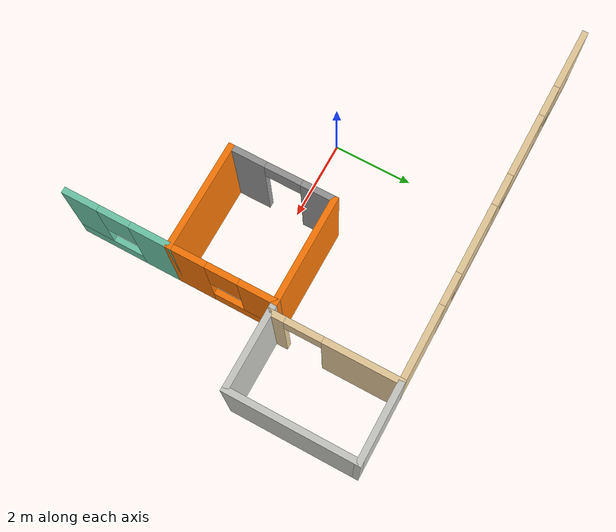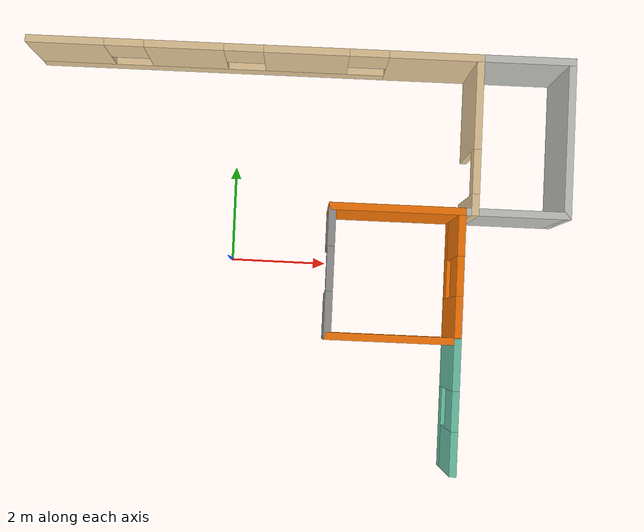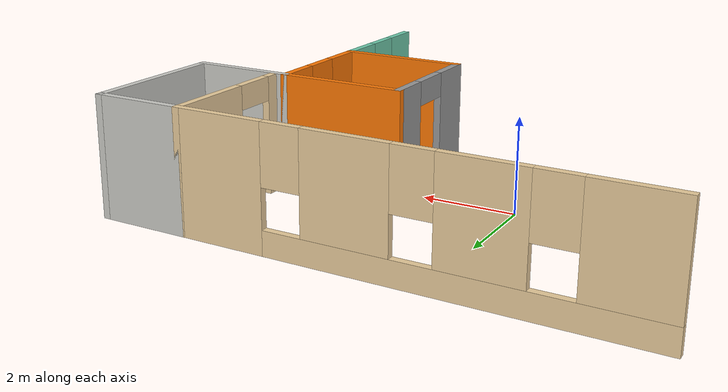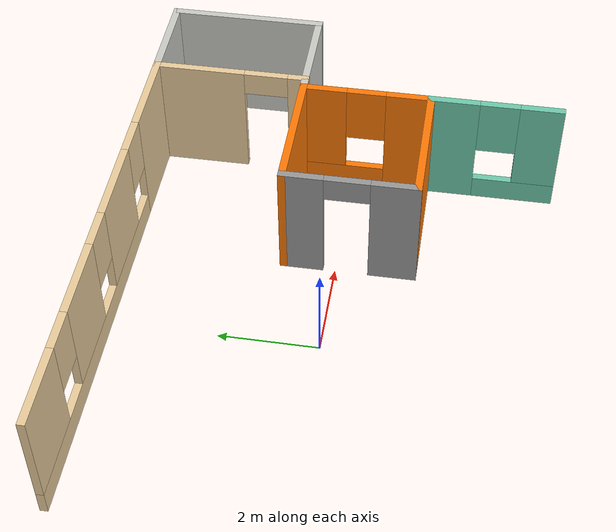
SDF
<sdf version="1.6">
 <model name="someHouse">
  <link name="Wall_24">
   <pose>3.375 -1.55 0 0 -0 0</pose>
   <visual name="Wall_24_Visual">
    <pose>0 0 1.25 0 -0 0</pose>
    <geometry><box><size>2.75 0.15 2.5</size></box></geometry>
    <material>
     <script><uri>file://media/materials/scripts/gazebo.material</uri><name>Gazebo/Grey</name></script>
     <ambient>0.996078 0.47451 0.0196078 1</ambient>
     <shader type="pixel"/>
     <diffuse>0.7 0.7 0.7 1</diffuse>
     <specular>0.01 0.01 0.01 1</specular>
     <emissive>0 0 0 1</emissive>
    </material>
    <meta><layer>0</layer></meta>
   </visual>
   <collision name="Wall_24_Collision">
    <pose>0 0 1.25 0 -0 0</pose>
    <geometry><box><size>2.75 0.15 2.5</size></box></geometry>
    <surface>
     <friction>
      <ode><mu>1</mu><mu2>1</mu2><fdir1>0 0 0</fdir1><slip1>0</slip1><slip2>0</slip2></ode>
      <torsional>
       <coefficient>1</coefficient>
       <patch_radius>0</patch_radius>
       <surface_radius>0</surface_radius>
       <use_patch_radius>1</use_patch_radius>
       <ode><slip>0</slip></ode>
      </torsional>
     </friction>
     <bounce><restitution_coefficient>0</restitution_coefficient><threshold>1e+06</threshold></bounce>
     <contact>
      <collide_without_contact>0</collide_without_contact>
      <collide_without_contact_bitmask>1</collide_without_contact_bitmask>
      <collide_bitmask>1</collide_bitmask>
      <ode>
       <soft_cfm>0</soft_cfm>
       <soft_erp>0.2</soft_erp>
       <kp>1e+13</kp>
       <kd>1</kd>
       <max_vel>0.01</max_vel>
       <min_depth>0</min_depth>
      </ode>
      <bullet>
       <split_impulse>1</split_impulse>
       <split_impulse_penetration_threshold>-0.01</split_impulse_penetration_threshold>
       <soft_cfm>0</soft_cfm>
       <soft_erp>0.2</soft_erp>
       <kp>1e+13</kp>
       <kd>1</kd>
      </bullet>
     </contact>
    </surface>
   </collision>
  </link>
  <link name="Wall_25">
   <pose>4.675 -0.25 0 0 -0 1.5708</pose>
   <visual name="Wall_25_Visual_0">
    <pose>-0.884286 0 1.25 0 -0 0</pose>
    <geometry><box><size>0.981427 0.15 2.5</size></box></geometry>
    <material>
     <script><uri>file://media/materials/scripts/gazebo.material</uri><name>Gazebo/Grey</name></script>
     <ambient>0.996078 0.47451 0.0196078 1</ambient>
     <shader type="pixel"/>
     <diffuse>0.7 0.7 0.7 1</diffuse>
     <specular>0.01 0.01 0.01 1</specular>
     <emissive>0 0 0 1</emissive>
    </material>
    <meta><layer>0</layer></meta>
   </visual>
   <visual name="Wall_25_Visual_1">
    <pose>0.490714 0 0.25 0 -0 0</pose>
    <geometry><box><size>1.76857 0.15 0.5</size></box></geometry>
    <material>
     <script><uri>file://media/materials/scripts/gazebo.material</uri><name>Gazebo/Grey</name></script>
     <ambient>0.996078 0.47451 0.0196078 1</ambient>
     <shader type="pixel"/>
     <diffuse>0.7 0.7 0.7 1</diffuse>
     <specular>0.01 0.01 0.01 1</specular>
     <emissive>0 0 0 1</emissive>
    </material>
    <meta><layer>0</layer></meta>
   </visual>
   <visual name="Wall_25_Visual_2">
    <pose>0.890714 0 1.5 0 -0 0</pose>
    <geometry><box><size>0.968573 0.15 2</size></box></geometry>
    <material>
     <script><uri>file://media/materials/scripts/gazebo.material</uri><name>Gazebo/Grey</name></script>
     <ambient>0.996078 0.47451 0.0196078 1</ambient>
     <shader type="pixel"/>
     <diffuse>0.7 0.7 0.7 1</diffuse>
     <specular>0.01 0.01 0.01 1</specular>
     <emissive>0 0 0 1</emissive>
    </material>
    <meta><layer>0</layer></meta>
   </visual>
   <visual name="Wall_25_Visual_3">
    <pose>0.006427 0 1.9 0 -0 0</pose>
    <geometry><box><size>0.8 0.15 1.2</size></box></geometry>
    <material>
     <script><uri>file://media/materials/scripts/gazebo.material</uri><name>Gazebo/Grey</name></script>
     <ambient>0.996078 0.47451 0.0196078 1</ambient>
     <shader type="pixel"/>
     <diffuse>0.7 0.7 0.7 1</diffuse>
     <specular>0.01 0.01 0.01 1</specular>
     <emissive>0 0 0 1</emissive>
    </material>
    <meta><layer>0</layer></meta>
   </visual>
   <collision name="Wall_25_Collision_0">
    <pose>-0.884286 0 1.25 0 -0 0</pose>
    <geometry><box><size>0.981427 0.15 2.5</size></box></geometry>
    <surface>
     <friction>
      <ode><mu>1</mu><mu2>1</mu2><fdir1>0 0 0</fdir1><slip1>0</slip1><slip2>0</slip2></ode>
      <torsional>
       <coefficient>1</coefficient>
       <patch_radius>0</patch_radius>
       <surface_radius>0</surface_radius>
       <use_patch_radius>1</use_patch_radius>
       <ode><slip>0</slip></ode>
      </torsional>
     </friction>
     <bounce><restitution_coefficient>0</restitution_coefficient><threshold>1e+06</threshold></bounce>
     <contact>
      <collide_without_contact>0</collide_without_contact>
      <collide_without_contact_bitmask>1</collide_without_contact_bitmask>
      <collide_bitmask>1</collide_bitmask>
      <ode>
       <soft_cfm>0</soft_cfm>
       <soft_erp>0.2</soft_erp>
       <kp>1e+13</kp>
       <kd>1</kd>
       <max_vel>0.01</max_vel>
       <min_depth>0</min_depth>
      </ode>
      <bullet>
       <split_impulse>1</split_impulse>
       <split_impulse_penetration_threshold>-0.01</split_impulse_penetration_threshold>
       <soft_cfm>0</soft_cfm>
       <soft_erp>0.2</soft_erp>
       <kp>1e+13</kp>
       <kd>1</kd>
      </bullet>
     </contact>
    </surface>
   </collision>
   <collision name="Wall_25_Collision_1">
    <pose>0.490714 0 0.25 0 -0 0</pose>
    <geometry><box><size>1.76857 0.15 0.5</size></box></geometry>
    <surface>
     <friction>
      <ode><mu>1</mu><mu2>1</mu2><fdir1>0 0 0</fdir1><slip1>0</slip1><slip2>0</slip2></ode>
      <torsional>
       <coefficient>1</coefficient>
       <patch_radius>0</patch_radius>
       <surface_radius>0</surface_radius>
       <use_patch_radius>1</use_patch_radius>
       <ode><slip>0</slip></ode>
      </torsional>
     </friction>
     <bounce><restitution_coefficient>0</restitution_coefficient><threshold>1e+06</threshold></bounce>
     <contact>
      <collide_without_contact>0</collide_without_contact>
      <collide_without_contact_bitmask>1</collide_without_contact_bitmask>
      <collide_bitmask>1</collide_bitmask>
      <ode>
       <soft_cfm>0</soft_cfm>
       <soft_erp>0.2</soft_erp>
       <kp>1e+13</kp>
       <kd>1</kd>
       <max_vel>0.01</max_vel>
       <min_depth>0</min_depth>
      </ode>
      <bullet>
       <split_impulse>1</split_impulse>
       <split_impulse_penetration_threshold>-0.01</split_impulse_penetration_threshold>
       <soft_cfm>0</soft_cfm>
       <soft_erp>0.2</soft_erp>
       <kp>1e+13</kp>
       <kd>1</kd>
      </bullet>
     </contact>
    </surface>
   </collision>
   <collision name="Wall_25_Collision_2">
    <pose>0.890714 0 1.5 0 -0 0</pose>
    <geometry><box><size>0.968573 0.15 2</size></box></geometry>
    <surface>
     <friction>
      <ode><mu>1</mu><mu2>1</mu2><fdir1>0 0 0</fdir1><slip1>0</slip1><slip2>0</slip2></ode>
      <torsional>
       <coefficient>1</coefficient>
       <patch_radius>0</patch_radius>
       <surface_radius>0</surface_radius>
       <use_patch_radius>1</use_patch_radius>
       <ode><slip>0</slip></ode>
      </torsional>
     </friction>
     <bounce><restitution_coefficient>0</restitution_coefficient><threshold>1e+06</threshold></bounce>
     <contact>
      <collide_without_contact>0</collide_without_contact>
      <collide_without_contact_bitmask>1</collide_without_contact_bitmask>
      <collide_bitmask>1</collide_bitmask>
      <ode>
       <soft_cfm>0</soft_cfm>
       <soft_erp>0.2</soft_erp>
       <kp>1e+13</kp>
       <kd>1</kd>
       <max_vel>0.01</max_vel>
       <min_depth>0</min_depth>
      </ode>
      <bullet>
       <split_impulse>1</split_impulse>
       <split_impulse_penetration_threshold>-0.01</split_impulse_penetration_threshold>
       <soft_cfm>0</soft_cfm>
       <soft_erp>0.2</soft_erp>
       <kp>1e+13</kp>
       <kd>1</kd>
      </bullet>
     </contact>
    </surface>
   </collision>
   <collision name="Wall_25_Collision_3">
    <pose>0.006427 0 1.9 0 -0 0</pose>
    <geometry><box><size>0.8 0.15 1.2</size></box></geometry>
    <surface>
     <friction>
      <ode><mu>1</mu><mu2>1</mu2><fdir1>0 0 0</fdir1><slip1>0</slip1><slip2>0</slip2></ode>
      <torsional>
       <coefficient>1</coefficient>
       <patch_radius>0</patch_radius>
       <surface_radius>0</surface_radius>
       <use_patch_radius>1</use_patch_radius>
       <ode><slip>0</slip></ode>
      </torsional>
     </friction>
     <bounce><restitution_coefficient>0</restitution_coefficient><threshold>1e+06</threshold></bounce>
     <contact>
      <collide_without_contact>0</collide_without_contact>
      <collide_without_contact_bitmask>1</collide_without_contact_bitmask>
      <collide_bitmask>1</collide_bitmask>
      <ode>
       <soft_cfm>0</soft_cfm>
       <soft_erp>0.2</soft_erp>
       <kp>1e+13</kp>
       <kd>1</kd>
       <max_vel>0.01</max_vel>
       <min_depth>0</min_depth>
      </ode>
      <bullet>
       <split_impulse>1</split_impulse>
       <split_impulse_penetration_threshold>-0.01</split_impulse_penetration_threshold>
       <soft_cfm>0</soft_cfm>
       <soft_erp>0.2</soft_erp>
       <kp>1e+13</kp>
       <kd>1</kd>
      </bullet>
     </contact>
    </surface>
   </collision>
  </link>
  <link name="Wall_26">
   <pose>3.375 1.05 0 0 -0 3.14159</pose>
   <visual name="Wall_26_Visual">
    <pose>0 0 1.25 0 -0 0</pose>
    <geometry><box><size>2.75 0.15 2.5</size></box></geometry>
    <material>
     <script><uri>file://media/materials/scripts/gazebo.material</uri><name>Gazebo/Grey</name></script>
     <ambient>0.996078 0.47451 0.0196078 1</ambient>
     <shader type="pixel"/>
     <diffuse>0.7 0.7 0.7 1</diffuse>
     <specular>0.01 0.01 0.01 1</specular>
     <emissive>0 0 0 1</emissive>
    </material>
    <meta><layer>0</layer></meta>
   </visual>
   <collision name="Wall_26_Collision">
    <pose>0 0 1.25 0 -0 0</pose>
    <geometry><box><size>2.75 0.15 2.5</size></box></geometry>
    <surface>
     <friction>
      <ode><mu>1</mu><mu2>1</mu2><fdir1>0 0 0</fdir1><slip1>0</slip1><slip2>0</slip2></ode>
      <torsional>
       <coefficient>1</coefficient>
       <patch_radius>0</patch_radius>
       <surface_radius>0</surface_radius>
       <use_patch_radius>1</use_patch_radius>
       <ode><slip>0</slip></ode>
      </torsional>
     </friction>
     <bounce><restitution_coefficient>0</restitution_coefficient><threshold>1e+06</threshold></bounce>
     <contact>
      <collide_without_contact>0</collide_without_contact>
      <collide_without_contact_bitmask>1</collide_without_contact_bitmask>
      <collide_bitmask>1</collide_bitmask>
      <ode>
       <soft_cfm>0</soft_cfm>
       <soft_erp>0.2</soft_erp>
       <kp>1e+13</kp>
       <kd>1</kd>
       <max_vel>0.01</max_vel>
       <min_depth>0</min_depth>
      </ode>
      <bullet>
       <split_impulse>1</split_impulse>
       <split_impulse_penetration_threshold>-0.01</split_impulse_penetration_threshold>
       <soft_cfm>0</soft_cfm>
       <soft_erp>0.2</soft_erp>
       <kp>1e+13</kp>
       <kd>1</kd>
      </bullet>
     </contact>
    </surface>
   </collision>
  </link>
  <link name="Wall_30">
   <pose>2.075 -0.25 0 0 0 -1.5708</pose>
   <visual name="Wall_30_Visual_0">
    <pose>-0.934617 0 1.25 0 -0 0</pose>
    <geometry><box><size>0.880765 0.15 2.5</size></box></geometry>
    <material>
     <script><uri>file://media/materials/scripts/gazebo.material</uri><name>Gazebo/Grey</name></script>
     <ambient>1 1 1 1</ambient>
     <shader type="pixel"/>
     <diffuse>0.7 0.7 0.7 1</diffuse>
     <specular>0.01 0.01 0.01 1</specular>
     <emissive>0 0 0 1</emissive>
    </material>
    <meta><layer>0</layer></meta>
   </visual>
   <visual name="Wall_30_Visual_1">
    <pose>0.890383 0 1.25 0 -0 0</pose>
    <geometry><box><size>0.969235 0.15 2.5</size></box></geometry>
    <material>
     <script><uri>file://media/materials/scripts/gazebo.material</uri><name>Gazebo/Grey</name></script>
     <ambient>1 1 1 1</ambient>
     <shader type="pixel"/>
     <diffuse>0.7 0.7 0.7 1</diffuse>
     <specular>0.01 0.01 0.01 1</specular>
     <emissive>0 0 0 1</emissive>
    </material>
    <meta><layer>0</layer></meta>
   </visual>
   <visual name="Wall_30_Visual_2">
    <pose>-0.044235 0 2.25 0 -0 0</pose>
    <geometry><box><size>0.9 0.15 0.5</size></box></geometry>
    <material>
     <script><uri>file://media/materials/scripts/gazebo.material</uri><name>Gazebo/Grey</name></script>
     <ambient>1 1 1 1</ambient>
     <shader type="pixel"/>
     <diffuse>0.7 0.7 0.7 1</diffuse>
     <specular>0.01 0.01 0.01 1</specular>
     <emissive>0 0 0 1</emissive>
    </material>
    <meta><layer>0</layer></meta>
   </visual>
   <collision name="Wall_30_Collision_0">
    <pose>-0.934617 0 1.25 0 -0 0</pose>
    <geometry><box><size>0.880765 0.15 2.5</size></box></geometry>
    <surface>
     <friction>
      <ode><mu>1</mu><mu2>1</mu2><fdir1>0 0 0</fdir1><slip1>0</slip1><slip2>0</slip2></ode>
      <torsional>
       <coefficient>1</coefficient>
       <patch_radius>0</patch_radius>
       <surface_radius>0</surface_radius>
       <use_patch_radius>1</use_patch_radius>
       <ode><slip>0</slip></ode>
      </torsional>
     </friction>
     <bounce><restitution_coefficient>0</restitution_coefficient><threshold>1e+06</threshold></bounce>
     <contact>
      <collide_without_contact>0</collide_without_contact>
      <collide_without_contact_bitmask>1</collide_without_contact_bitmask>
      <collide_bitmask>1</collide_bitmask>
      <ode>
       <soft_cfm>0</soft_cfm>
       <soft_erp>0.2</soft_erp>
       <kp>1e+13</kp>
       <kd>1</kd>
       <max_vel>0.01</max_vel>
       <min_depth>0</min_depth>
      </ode>
      <bullet>
       <split_impulse>1</split_impulse>
       <split_impulse_penetration_threshold>-0.01</split_impulse_penetration_threshold>
       <soft_cfm>0</soft_cfm>
       <soft_erp>0.2</soft_erp>
       <kp>1e+13</kp>
       <kd>1</kd>
      </bullet>
     </contact>
    </surface>
   </collision>
   <collision name="Wall_30_Collision_1">
    <pose>0.890383 0 1.25 0 -0 0</pose>
    <geometry><box><size>0.969235 0.15 2.5</size></box></geometry>
    <surface>
     <friction>
      <ode><mu>1</mu><mu2>1</mu2><fdir1>0 0 0</fdir1><slip1>0</slip1><slip2>0</slip2></ode>
      <torsional>
       <coefficient>1</coefficient>
       <patch_radius>0</patch_radius>
       <surface_radius>0</surface_radius>
       <use_patch_radius>1</use_patch_radius>
       <ode><slip>0</slip></ode>
      </torsional>
     </friction>
     <bounce><restitution_coefficient>0</restitution_coefficient><threshold>1e+06</threshold></bounce>
     <contact>
      <collide_without_contact>0</collide_without_contact>
      <collide_without_contact_bitmask>1</collide_without_contact_bitmask>
      <collide_bitmask>1</collide_bitmask>
      <ode>
       <soft_cfm>0</soft_cfm>
       <soft_erp>0.2</soft_erp>
       <kp>1e+13</kp>
       <kd>1</kd>
       <max_vel>0.01</max_vel>
       <min_depth>0</min_depth>
      </ode>
      <bullet>
       <split_impulse>1</split_impulse>
       <split_impulse_penetration_threshold>-0.01</split_impulse_penetration_threshold>
       <soft_cfm>0</soft_cfm>
       <soft_erp>0.2</soft_erp>
       <kp>1e+13</kp>
       <kd>1</kd>
      </bullet>
     </contact>
    </surface>
   </collision>
   <collision name="Wall_30_Collision_2">
    <pose>-0.044235 0 2.25 0 -0 0</pose>
    <geometry><box><size>0.9 0.15 0.5</size></box></geometry>
    <surface>
     <friction>
      <ode><mu>1</mu><mu2>1</mu2><fdir1>0 0 0</fdir1><slip1>0</slip1><slip2>0</slip2></ode>
      <torsional>
       <coefficient>1</coefficient>
       <patch_radius>0</patch_radius>
       <surface_radius>0</surface_radius>
       <use_patch_radius>1</use_patch_radius>
       <ode><slip>0</slip></ode>
      </torsional>
     </friction>
     <bounce><restitution_coefficient>0</restitution_coefficient><threshold>1e+06</threshold></bounce>
     <contact>
      <collide_without_contact>0</collide_without_contact>
      <collide_without_contact_bitmask>1</collide_without_contact_bitmask>
      <collide_bitmask>1</collide_bitmask>
      <ode>
       <soft_cfm>0</soft_cfm>
       <soft_erp>0.2</soft_erp>
       <kp>1e+13</kp>
       <kd>1</kd>
       <max_vel>0.01</max_vel>
       <min_depth>0</min_depth>
      </ode>
      <bullet>
       <split_impulse>1</split_impulse>
       <split_impulse_penetration_threshold>-0.01</split_impulse_penetration_threshold>
       <soft_cfm>0</soft_cfm>
       <soft_erp>0.2</soft_erp>
       <kp>1e+13</kp>
       <kd>1</kd>
      </bullet>
     </contact>
    </surface>
   </collision>
  </link>
  <link name="Wall_32">
   <pose>5.725 1.05 0 0 -0 0</pose>
   <visual name="Wall_32_Visual">
    <pose>0 0 1.25 0 -0 0</pose>
    <geometry><box><size>2.25 0.15 2.5</size></box></geometry>
    <material>
     <script><uri>file://media/materials/scripts/gazebo.material</uri><name>Gazebo/CeilingTiled</name></script>
     <ambient>0.760784 0.662745 0.627451 1</ambient>
     <shader type="pixel"/>
     <diffuse>1 1 1 1</diffuse>
     <specular>0 0 0 1</specular>
     <emissive>0 0 0 1</emissive>
    </material>
    <meta><layer>0</layer></meta>
   </visual>
   <collision name="Wall_32_Collision">
    <pose>0 0 1.25 0 -0 0</pose>
    <geometry><box><size>2.25 0.15 2.5</size></box></geometry>
    <surface>
     <friction>
      <ode><mu>1</mu><mu2>1</mu2><fdir1>0 0 0</fdir1><slip1>0</slip1><slip2>0</slip2></ode>
      <torsional>
       <coefficient>1</coefficient>
       <patch_radius>0</patch_radius>
       <surface_radius>0</surface_radius>
       <use_patch_radius>1</use_patch_radius>
       <ode><slip>0</slip></ode>
      </torsional>
     </friction>
     <bounce><restitution_coefficient>0</restitution_coefficient><threshold>1e+06</threshold></bounce>
     <contact>
      <collide_without_contact>0</collide_without_contact>
      <collide_without_contact_bitmask>1</collide_without_contact_bitmask>
      <collide_bitmask>1</collide_bitmask>
      <ode>
       <soft_cfm>0</soft_cfm>
       <soft_erp>0.2</soft_erp>
       <kp>1e+13</kp>
       <kd>1</kd>
       <max_vel>0.01</max_vel>
       <min_depth>0</min_depth>
      </ode>
      <bullet>
       <split_impulse>1</split_impulse>
       <split_impulse_penetration_threshold>-0.01</split_impulse_penetration_threshold>
       <soft_cfm>0</soft_cfm>
       <soft_erp>0.2</soft_erp>
       <kp>1e+13</kp>
       <kd>1</kd>
      </bullet>
     </contact>
    </surface>
   </collision>
  </link>
  <link name="Wall_33">
   <pose>6.775 2.6 0 0 -0 1.5708</pose>
   <visual name="Wall_33_Visual">
    <pose>0 0 1.25 0 -0 0</pose>
    <geometry><box><size>3.25 0.15 2.5</size></box></geometry>
    <material>
     <script><uri>file://media/materials/scripts/gazebo.material</uri><name>Gazebo/CeilingTiled</name></script>
     <ambient>0.760784 0.662745 0.627451 1</ambient>
     <shader type="pixel"/>
     <diffuse>1 1 1 1</diffuse>
     <specular>0 0 0 1</specular>
     <emissive>0 0 0 1</emissive>
    </material>
    <meta><layer>0</layer></meta>
   </visual>
   <collision name="Wall_33_Collision">
    <pose>0 0 1.25 0 -0 0</pose>
    <geometry><box><size>3.25 0.15 2.5</size></box></geometry>
    <surface>
     <friction>
      <ode><mu>1</mu><mu2>1</mu2><fdir1>0 0 0</fdir1><slip1>0</slip1><slip2>0</slip2></ode>
      <torsional>
       <coefficient>1</coefficient>
       <patch_radius>0</patch_radius>
       <surface_radius>0</surface_radius>
       <use_patch_radius>1</use_patch_radius>
       <ode><slip>0</slip></ode>
      </torsional>
     </friction>
     <bounce><restitution_coefficient>0</restitution_coefficient><threshold>1e+06</threshold></bounce>
     <contact>
      <collide_without_contact>0</collide_without_contact>
      <collide_without_contact_bitmask>1</collide_without_contact_bitmask>
      <collide_bitmask>1</collide_bitmask>
      <ode>
       <soft_cfm>0</soft_cfm>
       <soft_erp>0.2</soft_erp>
       <kp>1e+13</kp>
       <kd>1</kd>
       <max_vel>0.01</max_vel>
       <min_depth>0</min_depth>
      </ode>
      <bullet>
       <split_impulse>1</split_impulse>
       <split_impulse_penetration_threshold>-0.01</split_impulse_penetration_threshold>
       <soft_cfm>0</soft_cfm>
       <soft_erp>0.2</soft_erp>
       <kp>1e+13</kp>
       <kd>1</kd>
      </bullet>
     </contact>
    </surface>
   </collision>
  </link>
  <link name="Wall_34">
   <pose>5.85 4.15 0 0 -0 3.14159</pose>
   <visual name="Wall_34_Visual">
    <pose>0 0 1.25 0 -0 0</pose>
    <geometry><box><size>2 0.15 2.5</size></box></geometry>
    <material>
     <script><uri>file://media/materials/scripts/gazebo.material</uri><name>Gazebo/CeilingTiled</name></script>
     <ambient>0.760784 0.662745 0.627451 1</ambient>
     <shader type="pixel"/>
     <diffuse>1 1 1 1</diffuse>
     <specular>0 0 0 1</specular>
     <emissive>0 0 0 1</emissive>
    </material>
    <meta><layer>0</layer></meta>
   </visual>
   <collision name="Wall_34_Collision">
    <pose>0 0 1.25 0 -0 0</pose>
    <geometry><box><size>2 0.15 2.5</size></box></geometry>
    <surface>
     <friction>
      <ode><mu>1</mu><mu2>1</mu2><fdir1>0 0 0</fdir1><slip1>0</slip1><slip2>0</slip2></ode>
      <torsional>
       <coefficient>1</coefficient>
       <patch_radius>0</patch_radius>
       <surface_radius>0</surface_radius>
       <use_patch_radius>1</use_patch_radius>
       <ode><slip>0</slip></ode>
      </torsional>
     </friction>
     <bounce><restitution_coefficient>0</restitution_coefficient><threshold>1e+06</threshold></bounce>
     <contact>
      <collide_without_contact>0</collide_without_contact>
      <collide_without_contact_bitmask>1</collide_without_contact_bitmask>
      <collide_bitmask>1</collide_bitmask>
      <ode>
       <soft_cfm>0</soft_cfm>
       <soft_erp>0.2</soft_erp>
       <kp>1e+13</kp>
       <kd>1</kd>
       <max_vel>0.01</max_vel>
       <min_depth>0</min_depth>
      </ode>
      <bullet>
       <split_impulse>1</split_impulse>
       <split_impulse_penetration_threshold>-0.01</split_impulse_penetration_threshold>
       <soft_cfm>0</soft_cfm>
       <soft_erp>0.2</soft_erp>
       <kp>1e+13</kp>
       <kd>1</kd>
      </bullet>
     </contact>
    </surface>
   </collision>
  </link>
  <link name="Wall_35">
   <pose>4.925 2.6 0 0 0 -1.5708</pose>
   <visual name="Wall_35_Visual_0">
    <pose>-0.668512 0 1.25 0 -0 0</pose>
    <geometry><box><size>1.91298 0.15 2.5</size></box></geometry>
    <material>
     <script><uri>file://media/materials/scripts/gazebo.material</uri><name>Gazebo/Grey</name></script>
     <ambient>0.921569 0.807843 0.615686 1</ambient>
     <shader type="pixel"/>
     <diffuse>0.7 0.7 0.7 1</diffuse>
     <specular>0.01 0.01 0.01 1</specular>
     <emissive>0 0 0 1</emissive>
    </material>
    <meta><layer>0</layer></meta>
   </visual>
   <visual name="Wall_35_Visual_1">
    <pose>1.40649 0 1.25 0 -0 0</pose>
    <geometry><box><size>0.437025 0.15 2.5</size></box></geometry>
    <material>
     <script><uri>file://media/materials/scripts/gazebo.material</uri><name>Gazebo/Grey</name></script>
     <ambient>0.921569 0.807843 0.615686 1</ambient>
     <shader type="pixel"/>
     <diffuse>0.7 0.7 0.7 1</diffuse>
     <specular>0.01 0.01 0.01 1</specular>
     <emissive>0 0 0 1</emissive>
    </material>
    <meta><layer>0</layer></meta>
   </visual>
   <visual name="Wall_35_Visual_2">
    <pose>0.737975 0 2.25 0 -0 0</pose>
    <geometry><box><size>0.9 0.15 0.5</size></box></geometry>
    <material>
     <script><uri>file://media/materials/scripts/gazebo.material</uri><name>Gazebo/Grey</name></script>
     <ambient>0.921569 0.807843 0.615686 1</ambient>
     <shader type="pixel"/>
     <diffuse>0.7 0.7 0.7 1</diffuse>
     <specular>0.01 0.01 0.01 1</specular>
     <emissive>0 0 0 1</emissive>
    </material>
    <meta><layer>0</layer></meta>
   </visual>
   <collision name="Wall_35_Collision_0">
    <pose>-0.668512 0 1.25 0 -0 0</pose>
    <geometry><box><size>1.91298 0.15 2.5</size></box></geometry>
    <surface>
     <friction>
      <ode><mu>1</mu><mu2>1</mu2><fdir1>0 0 0</fdir1><slip1>0</slip1><slip2>0</slip2></ode>
      <torsional>
       <coefficient>1</coefficient>
       <patch_radius>0</patch_radius>
       <surface_radius>0</surface_radius>
       <use_patch_radius>1</use_patch_radius>
       <ode><slip>0</slip></ode>
      </torsional>
     </friction>
     <bounce><restitution_coefficient>0</restitution_coefficient><threshold>1e+06</threshold></bounce>
     <contact>
      <collide_without_contact>0</collide_without_contact>
      <collide_without_contact_bitmask>1</collide_without_contact_bitmask>
      <collide_bitmask>1</collide_bitmask>
      <ode>
       <soft_cfm>0</soft_cfm>
       <soft_erp>0.2</soft_erp>
       <kp>1e+13</kp>
       <kd>1</kd>
       <max_vel>0.01</max_vel>
       <min_depth>0</min_depth>
      </ode>
      <bullet>
       <split_impulse>1</split_impulse>
       <split_impulse_penetration_threshold>-0.01</split_impulse_penetration_threshold>
       <soft_cfm>0</soft_cfm>
       <soft_erp>0.2</soft_erp>
       <kp>1e+13</kp>
       <kd>1</kd>
      </bullet>
     </contact>
    </surface>
   </collision>
   <collision name="Wall_35_Collision_1">
    <pose>1.40649 0 1.25 0 -0 0</pose>
    <geometry><box><size>0.437025 0.15 2.5</size></box></geometry>
    <surface>
     <friction>
      <ode><mu>1</mu><mu2>1</mu2><fdir1>0 0 0</fdir1><slip1>0</slip1><slip2>0</slip2></ode>
      <torsional>
       <coefficient>1</coefficient>
       <patch_radius>0</patch_radius>
       <surface_radius>0</surface_radius>
       <use_patch_radius>1</use_patch_radius>
       <ode><slip>0</slip></ode>
      </torsional>
     </friction>
     <bounce><restitution_coefficient>0</restitution_coefficient><threshold>1e+06</threshold></bounce>
     <contact>
      <collide_without_contact>0</collide_without_contact>
      <collide_without_contact_bitmask>1</collide_without_contact_bitmask>
      <collide_bitmask>1</collide_bitmask>
      <ode>
       <soft_cfm>0</soft_cfm>
       <soft_erp>0.2</soft_erp>
       <kp>1e+13</kp>
       <kd>1</kd>
       <max_vel>0.01</max_vel>
       <min_depth>0</min_depth>
      </ode>
      <bullet>
       <split_impulse>1</split_impulse>
       <split_impulse_penetration_threshold>-0.01</split_impulse_penetration_threshold>
       <soft_cfm>0</soft_cfm>
       <soft_erp>0.2</soft_erp>
       <kp>1e+13</kp>
       <kd>1</kd>
      </bullet>
     </contact>
    </surface>
   </collision>
   <collision name="Wall_35_Collision_2">
    <pose>0.737975 0 2.25 0 -0 0</pose>
    <geometry><box><size>0.9 0.15 0.5</size></box></geometry>
    <surface>
     <friction>
      <ode><mu>1</mu><mu2>1</mu2><fdir1>0 0 0</fdir1><slip1>0</slip1><slip2>0</slip2></ode>
      <torsional>
       <coefficient>1</coefficient>
       <patch_radius>0</patch_radius>
       <surface_radius>0</surface_radius>
       <use_patch_radius>1</use_patch_radius>
       <ode><slip>0</slip></ode>
      </torsional>
     </friction>
     <bounce><restitution_coefficient>0</restitution_coefficient><threshold>1e+06</threshold></bounce>
     <contact>
      <collide_without_contact>0</collide_without_contact>
      <collide_without_contact_bitmask>1</collide_without_contact_bitmask>
      <collide_bitmask>1</collide_bitmask>
      <ode>
       <soft_cfm>0</soft_cfm>
       <soft_erp>0.2</soft_erp>
       <kp>1e+13</kp>
       <kd>1</kd>
       <max_vel>0.01</max_vel>
       <min_depth>0</min_depth>
      </ode>
      <bullet>
       <split_impulse>1</split_impulse>
       <split_impulse_penetration_threshold>-0.01</split_impulse_penetration_threshold>
       <soft_cfm>0</soft_cfm>
       <soft_erp>0.2</soft_erp>
       <kp>1e+13</kp>
       <kd>1</kd>
      </bullet>
     </contact>
    </surface>
   </collision>
  </link>
  <link name="Wall_37">
   <pose>0.375 4.15 0 0 -0 3.14159</pose>
   <visual name="Wall_37_Visual_0">
    <pose>-3.66804 0 1.25 0 -0 0</pose>
    <geometry><box><size>1.91392 0.15 2.5</size></box></geometry>
    <material>
     <script><uri>file://media/materials/scripts/gazebo.material</uri><name>Gazebo/Grey</name></script>
     <ambient>0.921569 0.807843 0.615686 1</ambient>
     <shader type="pixel"/>
     <diffuse>0.7 0.7 0.7 1</diffuse>
     <specular>0.01 0.01 0.01 1</specular>
     <emissive>0 0 0 1</emissive>
    </material>
    <meta><layer>0</layer></meta>
   </visual>
   <visual name="Wall_37_Visual_1">
    <pose>0.95696 0 0.25 0 -0 0</pose>
    <geometry><box><size>7.33608 0.15 0.5</size></box></geometry>
    <material>
     <script><uri>file://media/materials/scripts/gazebo.material</uri><name>Gazebo/Grey</name></script>
     <ambient>0.921569 0.807843 0.615686 1</ambient>
     <shader type="pixel"/>
     <diffuse>0.7 0.7 0.7 1</diffuse>
     <specular>0.01 0.01 0.01 1</specular>
     <emissive>0 0 0 1</emissive>
    </material>
    <meta><layer>0</layer></meta>
   </visual>
   <visual name="Wall_37_Visual_2">
    <pose>-1.04305 0 1.5 0 -0 0</pose>
    <geometry><box><size>1.73606 0.15 2</size></box></geometry>
    <material>
     <script><uri>file://media/materials/scripts/gazebo.material</uri><name>Gazebo/Grey</name></script>
     <ambient>0.921569 0.807843 0.615686 1</ambient>
     <shader type="pixel"/>
     <diffuse>0.7 0.7 0.7 1</diffuse>
     <specular>0.01 0.01 0.01 1</specular>
     <emissive>0 0 0 1</emissive>
    </material>
    <meta><layer>0</layer></meta>
   </visual>
   <visual name="Wall_37_Visual_3">
    <pose>1.43179 0 1.5 0 -0 0</pose>
    <geometry><box><size>1.61363 0.15 2</size></box></geometry>
    <material>
     <script><uri>file://media/materials/scripts/gazebo.material</uri><name>Gazebo/Grey</name></script>
     <ambient>0.921569 0.807843 0.615686 1</ambient>
     <shader type="pixel"/>
     <diffuse>0.7 0.7 0.7 1</diffuse>
     <specular>0.01 0.01 0.01 1</specular>
     <emissive>0 0 0 1</emissive>
    </material>
    <meta><layer>0</layer></meta>
   </visual>
   <visual name="Wall_37_Visual_4">
    <pose>3.8318 0 1.5 0 -0 0</pose>
    <geometry><box><size>1.58639 0.15 2</size></box></geometry>
    <material>
     <script><uri>file://media/materials/scripts/gazebo.material</uri><name>Gazebo/Grey</name></script>
     <ambient>0.921569 0.807843 0.615686 1</ambient>
     <shader type="pixel"/>
     <diffuse>0.7 0.7 0.7 1</diffuse>
     <specular>0.01 0.01 0.01 1</specular>
     <emissive>0 0 0 1</emissive>
    </material>
    <meta><layer>0</layer></meta>
   </visual>
   <visual name="Wall_37_Visual_5">
    <pose>-2.31108 0 1.9 0 -0 0</pose>
    <geometry><box><size>0.8 0.15 1.2</size></box></geometry>
    <material>
     <script><uri>file://media/materials/scripts/gazebo.material</uri><name>Gazebo/Grey</name></script>
     <ambient>0.921569 0.807843 0.615686 1</ambient>
     <shader type="pixel"/>
     <diffuse>0.7 0.7 0.7 1</diffuse>
     <specular>0.01 0.01 0.01 1</specular>
     <emissive>0 0 0 1</emissive>
    </material>
    <meta><layer>0</layer></meta>
   </visual>
   <visual name="Wall_37_Visual_6">
    <pose>0.224979 0 1.9 0 -0 0</pose>
    <geometry><box><size>0.8 0.15 1.2</size></box></geometry>
    <material>
     <script><uri>file://media/materials/scripts/gazebo.material</uri><name>Gazebo/Grey</name></script>
     <ambient>0.921569 0.807843 0.615686 1</ambient>
     <shader type="pixel"/>
     <diffuse>0.7 0.7 0.7 1</diffuse>
     <specular>0.01 0.01 0.01 1</specular>
     <emissive>0 0 0 1</emissive>
    </material>
    <meta><layer>0</layer></meta>
   </visual>
   <visual name="Wall_37_Visual_7">
    <pose>2.63861 0 1.9 0 -0 0</pose>
    <geometry><box><size>0.8 0.15 1.2</size></box></geometry>
    <material>
     <script><uri>file://media/materials/scripts/gazebo.material</uri><name>Gazebo/Grey</name></script>
     <ambient>0.921569 0.807843 0.615686 1</ambient>
     <shader type="pixel"/>
     <diffuse>0.7 0.7 0.7 1</diffuse>
     <specular>0.01 0.01 0.01 1</specular>
     <emissive>0 0 0 1</emissive>
    </material>
    <meta><layer>0</layer></meta>
   </visual>
   <collision name="Wall_37_Collision_0">
    <pose>-3.66804 0 1.25 0 -0 0</pose>
    <geometry><box><size>1.91392 0.15 2.5</size></box></geometry>
    <surface>
     <friction>
      <ode><mu>1</mu><mu2>1</mu2><fdir1>0 0 0</fdir1><slip1>0</slip1><slip2>0</slip2></ode>
      <torsional>
       <coefficient>1</coefficient>
       <patch_radius>0</patch_radius>
       <surface_radius>0</surface_radius>
       <use_patch_radius>1</use_patch_radius>
       <ode><slip>0</slip></ode>
      </torsional>
     </friction>
     <bounce><restitution_coefficient>0</restitution_coefficient><threshold>1e+06</threshold></bounce>
     <contact>
      <collide_without_contact>0</collide_without_contact>
      <collide_without_contact_bitmask>1</collide_without_contact_bitmask>
      <collide_bitmask>1</collide_bitmask>
      <ode>
       <soft_cfm>0</soft_cfm>
       <soft_erp>0.2</soft_erp>
       <kp>1e+13</kp>
       <kd>1</kd>
       <max_vel>0.01</max_vel>
       <min_depth>0</min_depth>
      </ode>
      <bullet>
       <split_impulse>1</split_impulse>
       <split_impulse_penetration_threshold>-0.01</split_impulse_penetration_threshold>
       <soft_cfm>0</soft_cfm>
       <soft_erp>0.2</soft_erp>
       <kp>1e+13</kp>
       <kd>1</kd>
      </bullet>
     </contact>
    </surface>
   </collision>
   <collision name="Wall_37_Collision_1">
    <pose>0.95696 0 0.25 0 -0 0</pose>
    <geometry><box><size>7.33608 0.15 0.5</size></box></geometry>
    <surface>
     <friction>
      <ode><mu>1</mu><mu2>1</mu2><fdir1>0 0 0</fdir1><slip1>0</slip1><slip2>0</slip2></ode>
      <torsional>
       <coefficient>1</coefficient>
       <patch_radius>0</patch_radius>
       <surface_radius>0</surface_radius>
       <use_patch_radius>1</use_patch_radius>
       <ode><slip>0</slip></ode>
      </torsional>
     </friction>
     <bounce><restitution_coefficient>0</restitution_coefficient><threshold>1e+06</threshold></bounce>
     <contact>
      <collide_without_contact>0</collide_without_contact>
      <collide_without_contact_bitmask>1</collide_without_contact_bitmask>
      <collide_bitmask>1</collide_bitmask>
      <ode>
       <soft_cfm>0</soft_cfm>
       <soft_erp>0.2</soft_erp>
       <kp>1e+13</kp>
       <kd>1</kd>
       <max_vel>0.01</max_vel>
       <min_depth>0</min_depth>
      </ode>
      <bullet>
       <split_impulse>1</split_impulse>
       <split_impulse_penetration_threshold>-0.01</split_impulse_penetration_threshold>
       <soft_cfm>0</soft_cfm>
       <soft_erp>0.2</soft_erp>
       <kp>1e+13</kp>
       <kd>1</kd>
      </bullet>
     </contact>
    </surface>
   </collision>
   <collision name="Wall_37_Collision_2">
    <pose>-1.04305 0 1.5 0 -0 0</pose>
    <geometry><box><size>1.73606 0.15 2</size></box></geometry>
    <surface>
     <friction>
      <ode><mu>1</mu><mu2>1</mu2><fdir1>0 0 0</fdir1><slip1>0</slip1><slip2>0</slip2></ode>
      <torsional>
       <coefficient>1</coefficient>
       <patch_radius>0</patch_radius>
       <surface_radius>0</surface_radius>
       <use_patch_radius>1</use_patch_radius>
       <ode><slip>0</slip></ode>
      </torsional>
     </friction>
     <bounce><restitution_coefficient>0</restitution_coefficient><threshold>1e+06</threshold></bounce>
     <contact>
      <collide_without_contact>0</collide_without_contact>
      <collide_without_contact_bitmask>1</collide_without_contact_bitmask>
      <collide_bitmask>1</collide_bitmask>
      <ode>
       <soft_cfm>0</soft_cfm>
       <soft_erp>0.2</soft_erp>
       <kp>1e+13</kp>
       <kd>1</kd>
       <max_vel>0.01</max_vel>
       <min_depth>0</min_depth>
      </ode>
      <bullet>
       <split_impulse>1</split_impulse>
       <split_impulse_penetration_threshold>-0.01</split_impulse_penetration_threshold>
       <soft_cfm>0</soft_cfm>
       <soft_erp>0.2</soft_erp>
       <kp>1e+13</kp>
       <kd>1</kd>
      </bullet>
     </contact>
    </surface>
   </collision>
   <collision name="Wall_37_Collision_3">
    <pose>1.43179 0 1.5 0 -0 0</pose>
    <geometry><box><size>1.61363 0.15 2</size></box></geometry>
    <surface>
     <friction>
      <ode><mu>1</mu><mu2>1</mu2><fdir1>0 0 0</fdir1><slip1>0</slip1><slip2>0</slip2></ode>
      <torsional>
       <coefficient>1</coefficient>
       <patch_radius>0</patch_radius>
       <surface_radius>0</surface_radius>
       <use_patch_radius>1</use_patch_radius>
       <ode><slip>0</slip></ode>
      </torsional>
     </friction>
     <bounce><restitution_coefficient>0</restitution_coefficient><threshold>1e+06</threshold></bounce>
     <contact>
      <collide_without_contact>0</collide_without_contact>
      <collide_without_contact_bitmask>1</collide_without_contact_bitmask>
      <collide_bitmask>1</collide_bitmask>
      <ode>
       <soft_cfm>0</soft_cfm>
       <soft_erp>0.2</soft_erp>
       <kp>1e+13</kp>
       <kd>1</kd>
       <max_vel>0.01</max_vel>
       <min_depth>0</min_depth>
      </ode>
      <bullet>
       <split_impulse>1</split_impulse>
       <split_impulse_penetration_threshold>-0.01</split_impulse_penetration_threshold>
       <soft_cfm>0</soft_cfm>
       <soft_erp>0.2</soft_erp>
       <kp>1e+13</kp>
       <kd>1</kd>
      </bullet>
     </contact>
    </surface>
   </collision>
   <collision name="Wall_37_Collision_4">
    <pose>3.8318 0 1.5 0 -0 0</pose>
    <geometry><box><size>1.58639 0.15 2</size></box></geometry>
    <surface>
     <friction>
      <ode><mu>1</mu><mu2>1</mu2><fdir1>0 0 0</fdir1><slip1>0</slip1><slip2>0</slip2></ode>
      <torsional>
       <coefficient>1</coefficient>
       <patch_radius>0</patch_radius>
       <surface_radius>0</surface_radius>
       <use_patch_radius>1</use_patch_radius>
       <ode><slip>0</slip></ode>
      </torsional>
     </friction>
     <bounce><restitution_coefficient>0</restitution_coefficient><threshold>1e+06</threshold></bounce>
     <contact>
      <collide_without_contact>0</collide_without_contact>
      <collide_without_contact_bitmask>1</collide_without_contact_bitmask>
      <collide_bitmask>1</collide_bitmask>
      <ode>
       <soft_cfm>0</soft_cfm>
       <soft_erp>0.2</soft_erp>
       <kp>1e+13</kp>
       <kd>1</kd>
       <max_vel>0.01</max_vel>
       <min_depth>0</min_depth>
      </ode>
      <bullet>
       <split_impulse>1</split_impulse>
       <split_impulse_penetration_threshold>-0.01</split_impulse_penetration_threshold>
       <soft_cfm>0</soft_cfm>
       <soft_erp>0.2</soft_erp>
       <kp>1e+13</kp>
       <kd>1</kd>
      </bullet>
     </contact>
    </surface>
   </collision>
   <collision name="Wall_37_Collision_5">
    <pose>-2.31108 0 1.9 0 -0 0</pose>
    <geometry><box><size>0.8 0.15 1.2</size></box></geometry>
    <surface>
     <friction>
      <ode><mu>1</mu><mu2>1</mu2><fdir1>0 0 0</fdir1><slip1>0</slip1><slip2>0</slip2></ode>
      <torsional>
       <coefficient>1</coefficient>
       <patch_radius>0</patch_radius>
       <surface_radius>0</surface_radius>
       <use_patch_radius>1</use_patch_radius>
       <ode><slip>0</slip></ode>
      </torsional>
     </friction>
     <bounce><restitution_coefficient>0</restitution_coefficient><threshold>1e+06</threshold></bounce>
     <contact>
      <collide_without_contact>0</collide_without_contact>
      <collide_without_contact_bitmask>1</collide_without_contact_bitmask>
      <collide_bitmask>1</collide_bitmask>
      <ode>
       <soft_cfm>0</soft_cfm>
       <soft_erp>0.2</soft_erp>
       <kp>1e+13</kp>
       <kd>1</kd>
       <max_vel>0.01</max_vel>
       <min_depth>0</min_depth>
      </ode>
      <bullet>
       <split_impulse>1</split_impulse>
       <split_impulse_penetration_threshold>-0.01</split_impulse_penetration_threshold>
       <soft_cfm>0</soft_cfm>
       <soft_erp>0.2</soft_erp>
       <kp>1e+13</kp>
       <kd>1</kd>
      </bullet>
     </contact>
    </surface>
   </collision>
   <collision name="Wall_37_Collision_6">
    <pose>0.224979 0 1.9 0 -0 0</pose>
    <geometry><box><size>0.8 0.15 1.2</size></box></geometry>
    <surface>
     <friction>
      <ode><mu>1</mu><mu2>1</mu2><fdir1>0 0 0</fdir1><slip1>0</slip1><slip2>0</slip2></ode>
      <torsional>
       <coefficient>1</coefficient>
       <patch_radius>0</patch_radius>
       <surface_radius>0</surface_radius>
       <use_patch_radius>1</use_patch_radius>
       <ode><slip>0</slip></ode>
      </torsional>
     </friction>
     <bounce><restitution_coefficient>0</restitution_coefficient><threshold>1e+06</threshold></bounce>
     <contact>
      <collide_without_contact>0</collide_without_contact>
      <collide_without_contact_bitmask>1</collide_without_contact_bitmask>
      <collide_bitmask>1</collide_bitmask>
      <ode>
       <soft_cfm>0</soft_cfm>
       <soft_erp>0.2</soft_erp>
       <kp>1e+13</kp>
       <kd>1</kd>
       <max_vel>0.01</max_vel>
       <min_depth>0</min_depth>
      </ode>
      <bullet>
       <split_impulse>1</split_impulse>
       <split_impulse_penetration_threshold>-0.01</split_impulse_penetration_threshold>
       <soft_cfm>0</soft_cfm>
       <soft_erp>0.2</soft_erp>
       <kp>1e+13</kp>
       <kd>1</kd>
      </bullet>
     </contact>
    </surface>
   </collision>
   <collision name="Wall_37_Collision_7">
    <pose>2.63861 0 1.9 0 -0 0</pose>
    <geometry><box><size>0.8 0.15 1.2</size></box></geometry>
    <surface>
     <friction>
      <ode><mu>1</mu><mu2>1</mu2><fdir1>0 0 0</fdir1><slip1>0</slip1><slip2>0</slip2></ode>
      <torsional>
       <coefficient>1</coefficient>
       <patch_radius>0</patch_radius>
       <surface_radius>0</surface_radius>
       <use_patch_radius>1</use_patch_radius>
       <ode><slip>0</slip></ode>
      </torsional>
     </friction>
     <bounce><restitution_coefficient>0</restitution_coefficient><threshold>1e+06</threshold></bounce>
     <contact>
      <collide_without_contact>0</collide_without_contact>
      <collide_without_contact_bitmask>1</collide_without_contact_bitmask>
      <collide_bitmask>1</collide_bitmask>
      <ode>
       <soft_cfm>0</soft_cfm>
       <soft_erp>0.2</soft_erp>
       <kp>1e+13</kp>
       <kd>1</kd>
       <max_vel>0.01</max_vel>
       <min_depth>0</min_depth>
      </ode>
      <bullet>
       <split_impulse>1</split_impulse>
       <split_impulse_penetration_threshold>-0.01</split_impulse_penetration_threshold>
       <soft_cfm>0</soft_cfm>
       <soft_erp>0.2</soft_erp>
       <kp>1e+13</kp>
       <kd>1</kd>
      </bullet>
     </contact>
    </surface>
   </collision>
  </link>
  <link name="Wall_45">
   <pose>4.675 -2.85 0 0 0 -1.5708</pose>
   <visual name="Wall_45_Visual_0">
    <pose>-0.844365 0 1.25 0 -0 0</pose>
    <geometry><box><size>1.06127 0.15 2.5</size></box></geometry>
    <material>
     <script><uri>file://media/materials/scripts/gazebo.material</uri><name>Gazebo/Grey</name></script>
     <ambient>0.435294 0.796078 0.67451 1</ambient>
     <shader type="pixel"/>
     <diffuse>0.7 0.7 0.7 1</diffuse>
     <specular>0.01 0.01 0.01 1</specular>
     <emissive>0 0 0 1</emissive>
    </material>
    <meta><layer>0</layer></meta>
   </visual>
   <visual name="Wall_45_Visual_1">
    <pose>0.530635 0 0.25 0 -0 0</pose>
    <geometry><box><size>1.68873 0.15 0.5</size></box></geometry>
    <material>
     <script><uri>file://media/materials/scripts/gazebo.material</uri><name>Gazebo/Grey</name></script>
     <ambient>0.435294 0.796078 0.67451 1</ambient>
     <shader type="pixel"/>
     <diffuse>0.7 0.7 0.7 1</diffuse>
     <specular>0.01 0.01 0.01 1</specular>
     <emissive>0 0 0 1</emissive>
    </material>
    <meta><layer>0</layer></meta>
   </visual>
   <visual name="Wall_45_Visual_2">
    <pose>0.930635 0 1.5 0 -0 0</pose>
    <geometry><box><size>0.88873 0.15 2</size></box></geometry>
    <material>
     <script><uri>file://media/materials/scripts/gazebo.material</uri><name>Gazebo/Grey</name></script>
     <ambient>0.435294 0.796078 0.67451 1</ambient>
     <shader type="pixel"/>
     <diffuse>0.7 0.7 0.7 1</diffuse>
     <specular>0.01 0.01 0.01 1</specular>
     <emissive>0 0 0 1</emissive>
    </material>
    <meta><layer>0</layer></meta>
   </visual>
   <visual name="Wall_45_Visual_3">
    <pose>0.08627 0 1.9 0 -0 0</pose>
    <geometry><box><size>0.8 0.15 1.2</size></box></geometry>
    <material>
     <script><uri>file://media/materials/scripts/gazebo.material</uri><name>Gazebo/Grey</name></script>
     <ambient>0.435294 0.796078 0.67451 1</ambient>
     <shader type="pixel"/>
     <diffuse>0.7 0.7 0.7 1</diffuse>
     <specular>0.01 0.01 0.01 1</specular>
     <emissive>0 0 0 1</emissive>
    </material>
    <meta><layer>0</layer></meta>
   </visual>
   <collision name="Wall_45_Collision_0">
    <pose>-0.844365 0 1.25 0 -0 0</pose>
    <geometry><box><size>1.06127 0.15 2.5</size></box></geometry>
    <surface>
     <friction>
      <ode><mu>1</mu><mu2>1</mu2><fdir1>0 0 0</fdir1><slip1>0</slip1><slip2>0</slip2></ode>
      <torsional>
       <coefficient>1</coefficient>
       <patch_radius>0</patch_radius>
       <surface_radius>0</surface_radius>
       <use_patch_radius>1</use_patch_radius>
       <ode><slip>0</slip></ode>
      </torsional>
     </friction>
     <bounce><restitution_coefficient>0</restitution_coefficient><threshold>1e+06</threshold></bounce>
     <contact>
      <collide_without_contact>0</collide_without_contact>
      <collide_without_contact_bitmask>1</collide_without_contact_bitmask>
      <collide_bitmask>1</collide_bitmask>
      <ode>
       <soft_cfm>0</soft_cfm>
       <soft_erp>0.2</soft_erp>
       <kp>1e+13</kp>
       <kd>1</kd>
       <max_vel>0.01</max_vel>
       <min_depth>0</min_depth>
      </ode>
      <bullet>
       <split_impulse>1</split_impulse>
       <split_impulse_penetration_threshold>-0.01</split_impulse_penetration_threshold>
       <soft_cfm>0</soft_cfm>
       <soft_erp>0.2</soft_erp>
       <kp>1e+13</kp>
       <kd>1</kd>
      </bullet>
     </contact>
    </surface>
   </collision>
   <collision name="Wall_45_Collision_1">
    <pose>0.530635 0 0.25 0 -0 0</pose>
    <geometry><box><size>1.68873 0.15 0.5</size></box></geometry>
    <surface>
     <friction>
      <ode><mu>1</mu><mu2>1</mu2><fdir1>0 0 0</fdir1><slip1>0</slip1><slip2>0</slip2></ode>
      <torsional>
       <coefficient>1</coefficient>
       <patch_radius>0</patch_radius>
       <surface_radius>0</surface_radius>
       <use_patch_radius>1</use_patch_radius>
       <ode><slip>0</slip></ode>
      </torsional>
     </friction>
     <bounce><restitution_coefficient>0</restitution_coefficient><threshold>1e+06</threshold></bounce>
     <contact>
      <collide_without_contact>0</collide_without_contact>
      <collide_without_contact_bitmask>1</collide_without_contact_bitmask>
      <collide_bitmask>1</collide_bitmask>
      <ode>
       <soft_cfm>0</soft_cfm>
       <soft_erp>0.2</soft_erp>
       <kp>1e+13</kp>
       <kd>1</kd>
       <max_vel>0.01</max_vel>
       <min_depth>0</min_depth>
      </ode>
      <bullet>
       <split_impulse>1</split_impulse>
       <split_impulse_penetration_threshold>-0.01</split_impulse_penetration_threshold>
       <soft_cfm>0</soft_cfm>
       <soft_erp>0.2</soft_erp>
       <kp>1e+13</kp>
       <kd>1</kd>
      </bullet>
     </contact>
    </surface>
   </collision>
   <collision name="Wall_45_Collision_2">
    <pose>0.930635 0 1.5 0 -0 0</pose>
    <geometry><box><size>0.88873 0.15 2</size></box></geometry>
    <surface>
     <friction>
      <ode><mu>1</mu><mu2>1</mu2><fdir1>0 0 0</fdir1><slip1>0</slip1><slip2>0</slip2></ode>
      <torsional>
       <coefficient>1</coefficient>
       <patch_radius>0</patch_radius>
       <surface_radius>0</surface_radius>
       <use_patch_radius>1</use_patch_radius>
       <ode><slip>0</slip></ode>
      </torsional>
     </friction>
     <bounce><restitution_coefficient>0</restitution_coefficient><threshold>1e+06</threshold></bounce>
     <contact>
      <collide_without_contact>0</collide_without_contact>
      <collide_without_contact_bitmask>1</collide_without_contact_bitmask>
      <collide_bitmask>1</collide_bitmask>
      <ode>
       <soft_cfm>0</soft_cfm>
       <soft_erp>0.2</soft_erp>
       <kp>1e+13</kp>
       <kd>1</kd>
       <max_vel>0.01</max_vel>
       <min_depth>0</min_depth>
      </ode>
      <bullet>
       <split_impulse>1</split_impulse>
       <split_impulse_penetration_threshold>-0.01</split_impulse_penetration_threshold>
       <soft_cfm>0</soft_cfm>
       <soft_erp>0.2</soft_erp>
       <kp>1e+13</kp>
       <kd>1</kd>
      </bullet>
     </contact>
    </surface>
   </collision>
   <collision name="Wall_45_Collision_3">
    <pose>0.08627 0 1.9 0 -0 0</pose>
    <geometry><box><size>0.8 0.15 1.2</size></box></geometry>
    <surface>
     <friction>
      <ode><mu>1</mu><mu2>1</mu2><fdir1>0 0 0</fdir1><slip1>0</slip1><slip2>0</slip2></ode>
      <torsional>
       <coefficient>1</coefficient>
       <patch_radius>0</patch_radius>
       <surface_radius>0</surface_radius>
       <use_patch_radius>1</use_patch_radius>
       <ode><slip>0</slip></ode>
      </torsional>
     </friction>
     <bounce><restitution_coefficient>0</restitution_coefficient><threshold>1e+06</threshold></bounce>
     <contact>
      <collide_without_contact>0</collide_without_contact>
      <collide_without_contact_bitmask>1</collide_without_contact_bitmask>
      <collide_bitmask>1</collide_bitmask>
      <ode>
       <soft_cfm>0</soft_cfm>
       <soft_erp>0.2</soft_erp>
       <kp>1e+13</kp>
       <kd>1</kd>
       <max_vel>0.01</max_vel>
       <min_depth>0</min_depth>
      </ode>
      <bullet>
       <split_impulse>1</split_impulse>
       <split_impulse_penetration_threshold>-0.01</split_impulse_penetration_threshold>
       <soft_cfm>0</soft_cfm>
       <soft_erp>0.2</soft_erp>
       <kp>1e+13</kp>
       <kd>1</kd>
      </bullet>
     </contact>
    </surface>
   </collision>
  </link>
  <static>1</static>
 </model>
</sdf>
